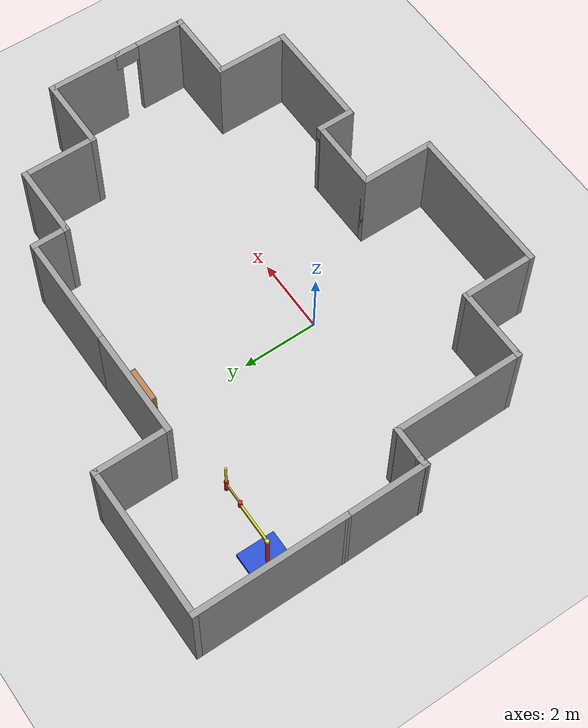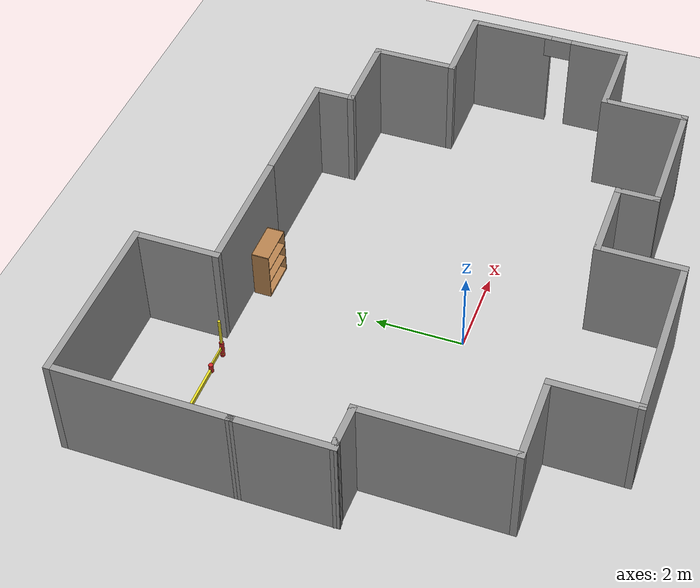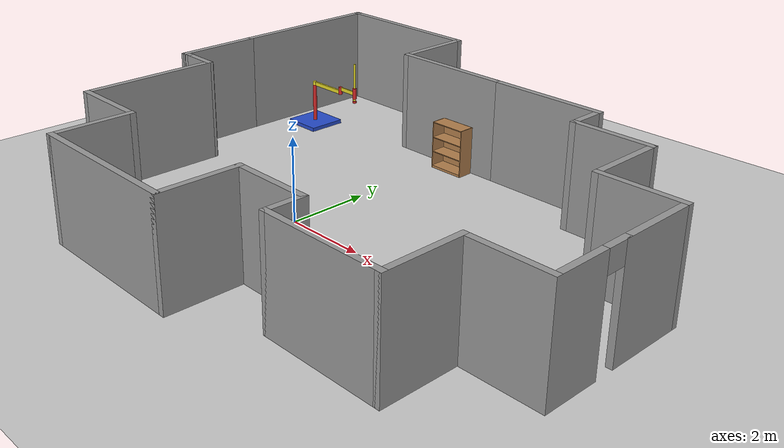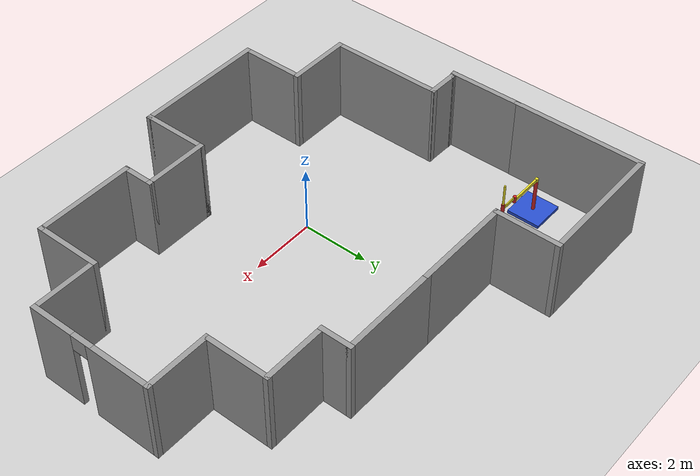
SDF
<sdf version="1.7">
 <world name="default">
  <light name="sun" type="directional">
   <pose>0 0 10 0 -0 0</pose>
   <diffuse>0.8 0.8 0.8 1</diffuse>
   <specular>0.2 0.2 0.2 1</specular>
   <attenuation>
    <range>1000</range>
    <constant>0.9</constant>
    <linear>0.01</linear>
    <quadratic>0.001</quadratic>
   </attenuation>
   <direction>-0.5 0.1 -0.9</direction>
   <spot><inner_angle>0</inner_angle><outer_angle>0</outer_angle><falloff>0</falloff></spot>
  </light>
  <model name="ground_plane">
   <static>1</static>
   <link name="link">
    <collision name="collision">
     <geometry><plane><normal>0 0 1</normal><size>100 100</size></plane></geometry>
     <surface>
      <contact><collide_bitmask>65535</collide_bitmask></contact>
      <friction><ode><mu>100</mu><mu2>50</mu2></ode></friction>
     </surface>
    </collision>
    <visual name="visual">
     <cast_shadows>0</cast_shadows>
     <geometry><plane><normal>0 0 1</normal><size>100 100</size></plane></geometry>
     <material>
      <script><uri>file://media/materials/scripts/gazebo.material</uri><name>Gazebo/Grey</name></script>
     </material>
    </visual>
   </link>
  </model>
  <gravity>0 0 -9.8</gravity>
  <magnetic_field>6e-06 2.3e-05 -4.2e-05</magnetic_field>
  <atmosphere type="adiabatic"/>
  <physics type="ode">
   <max_step_size>0.001</max_step_size>
   <real_time_factor>1</real_time_factor>
   <real_time_update_rate>1000</real_time_update_rate>
  </physics>
  <scene><ambient>0.4 0.4 0.4 1</ambient><background>0.7 0.7 0.7 1</background><shadows>1</shadows></scene>
  <audio><device>default</device></audio>
  <spherical_coordinates>
   <surface_model>EARTH_WGS84</surface_model>
   <latitude_deg>0</latitude_deg>
   <longitude_deg>0</longitude_deg>
   <elevation>0</elevation>
   <heading_deg>0</heading_deg>
  </spherical_coordinates>
  <model name="my_house">
   <pose>1.30477 1.28 0 0 -0 0</pose>
   <link name="Wall_0">
    <collision name="Wall_0_Collision">
     <geometry><box><size>4 0.15 2.5</size></box></geometry>
     <pose>0 0 1.25 0 -0 0</pose>
    </collision>
    <visual name="Wall_0_Visual">
     <pose>0 0 1.25 0 -0 0</pose>
     <geometry><box><size>4 0.15 2.5</size></box></geometry>
     <material>
      <script><uri>file://media/materials/scripts/gazebo.material</uri><name>Gazebo/Grey</name></script>
      <ambient>1 1 1 1</ambient>
     </material>
     <meta><layer>0</layer></meta>
    </visual>
    <pose>-1.84977 -5.55 0 0 -0 0</pose>
   </link>
   <link name="Wall_1">
    <collision name="Wall_1_Collision">
     <geometry><box><size>2 0.15 2.5</size></box></geometry>
     <pose>0 0 1.25 0 -0 0</pose>
    </collision>
    <visual name="Wall_1_Visual">
     <pose>0 0 1.25 0 -0 0</pose>
     <geometry><box><size>2 0.15 2.5</size></box></geometry>
     <material>
      <script><uri>file://media/materials/scripts/gazebo.material</uri><name>Gazebo/Grey</name></script>
      <ambient>1 1 1 1</ambient>
     </material>
     <meta><layer>0</layer></meta>
    </visual>
    <pose>0.075228 -4.625 0 0 -0 1.5708</pose>
   </link>
   <link name="Wall_10">
    <collision name="Wall_10_Collision">
     <geometry><box><size>2 0.15 2.5</size></box></geometry>
     <pose>0 0 1.25 0 -0 0</pose>
    </collision>
    <visual name="Wall_10_Visual">
     <pose>0 0 1.25 0 -0 0</pose>
     <geometry><box><size>2 0.15 2.5</size></box></geometry>
     <material>
      <script><uri>file://media/materials/scripts/gazebo.material</uri><name>Gazebo/Grey</name></script>
      <ambient>1 1 1 1</ambient>
     </material>
     <meta><layer>0</layer></meta>
    </visual>
    <pose>5.70023 1 0 0 -0 3.14159</pose>
   </link>
   <link name="Wall_11">
    <collision name="Wall_11_Collision">
     <geometry><box><size>2 0.15 2.5</size></box></geometry>
     <pose>0 0 1.25 0 -0 0</pose>
    </collision>
    <visual name="Wall_11_Visual">
     <pose>0 0 1.25 0 -0 0</pose>
     <geometry><box><size>2 0.15 2.5</size></box></geometry>
     <material>
      <script><uri>file://media/materials/scripts/gazebo.material</uri><name>Gazebo/Grey</name></script>
      <ambient>1 1 1 1</ambient>
     </material>
     <meta><layer>0</layer></meta>
    </visual>
    <pose>4.77523 1.925 0 0 -0 1.5708</pose>
   </link>
   <link name="Wall_13">
    <collision name="Wall_13_Collision">
     <geometry><box><size>2 0.15 2.5</size></box></geometry>
     <pose>0 0 1.25 0 -0 0</pose>
    </collision>
    <visual name="Wall_13_Visual">
     <pose>0 0 1.25 0 -0 0</pose>
     <geometry><box><size>2 0.15 2.5</size></box></geometry>
     <material>
      <script><uri>file://media/materials/scripts/gazebo.material</uri><name>Gazebo/Grey</name></script>
      <ambient>1 1 1 1</ambient>
     </material>
     <meta><layer>0</layer></meta>
    </visual>
    <pose>3.85023 2.85 0 0 -0 3.14159</pose>
   </link>
   <link name="Wall_14">
    <collision name="Wall_14_Collision">
     <geometry><box><size>1 0.15 2.5</size></box></geometry>
     <pose>0 0 1.25 0 -0 0</pose>
    </collision>
    <visual name="Wall_14_Visual">
     <pose>0 0 1.25 0 -0 0</pose>
     <geometry><box><size>1 0.15 2.5</size></box></geometry>
     <material>
      <script><uri>file://media/materials/scripts/gazebo.material</uri><name>Gazebo/Grey</name></script>
      <ambient>1 1 1 1</ambient>
     </material>
     <meta><layer>0</layer></meta>
    </visual>
    <pose>2.92523 3.275 0 0 -0 1.5708</pose>
   </link>
   <link name="Wall_15">
    <collision name="Wall_15_Collision">
     <geometry><box><size>3 0.15 2.5</size></box></geometry>
     <pose>0 0 1.25 0 -0 0</pose>
    </collision>
    <visual name="Wall_15_Visual">
     <pose>0 0 1.25 0 -0 0</pose>
     <geometry><box><size>3 0.15 2.5</size></box></geometry>
     <material>
      <script><uri>file://media/materials/scripts/gazebo.material</uri><name>Gazebo/Grey</name></script>
      <ambient>1 1 1 1</ambient>
     </material>
     <meta><layer>0</layer></meta>
    </visual>
    <pose>1.50023 3.7 0 0 -0 3.14159</pose>
   </link>
   <link name="Wall_16">
    <collision name="Wall_16_Collision">
     <geometry><box><size>3 0.15 2.5</size></box></geometry>
     <pose>0 0 1.25 0 -0 0</pose>
    </collision>
    <visual name="Wall_16_Visual">
     <pose>0 0 1.25 0 -0 0</pose>
     <geometry><box><size>3 0.15 2.5</size></box></geometry>
     <material>
      <script><uri>file://media/materials/scripts/gazebo.material</uri><name>Gazebo/Grey</name></script>
      <ambient>1 1 1 1</ambient>
     </material>
     <meta><layer>0</layer></meta>
    </visual>
    <pose>-1.34977 3.7 0 0 -0 3.14159</pose>
   </link>
   <link name="Wall_18">
    <collision name="Wall_18_Collision">
     <geometry><box><size>2 0.15 2.5</size></box></geometry>
     <pose>0 0 1.25 0 -0 0</pose>
    </collision>
    <visual name="Wall_18_Visual">
     <pose>0 0 1.25 0 -0 0</pose>
     <geometry><box><size>2 0.15 2.5</size></box></geometry>
     <material>
      <script><uri>file://media/materials/scripts/gazebo.material</uri><name>Gazebo/Grey</name></script>
      <ambient>1 1 1 1</ambient>
     </material>
     <meta><layer>0</layer></meta>
    </visual>
    <pose>-2.77477 4.625 0 0 -0 1.5708</pose>
   </link>
   <link name="Wall_19">
    <collision name="Wall_19_Collision">
     <geometry><box><size>4 0.15 2.5</size></box></geometry>
     <pose>0 0 1.25 0 -0 0</pose>
    </collision>
    <visual name="Wall_19_Visual">
     <pose>0 0 1.25 0 -0 0</pose>
     <geometry><box><size>4 0.15 2.5</size></box></geometry>
     <material>
      <script><uri>file://media/materials/scripts/gazebo.material</uri><name>Gazebo/Grey</name></script>
      <ambient>1 1 1 1</ambient>
     </material>
     <meta><layer>0</layer></meta>
    </visual>
    <pose>-4.69977 5.55 0 0 -0 3.14159</pose>
   </link>
   <link name="Wall_2">
    <collision name="Wall_2_Collision">
     <geometry><box><size>2 0.15 2.5</size></box></geometry>
     <pose>0 0 1.25 0 -0 0</pose>
    </collision>
    <visual name="Wall_2_Visual">
     <pose>0 0 1.25 0 -0 0</pose>
     <geometry><box><size>2 0.15 2.5</size></box></geometry>
     <material>
      <script><uri>file://media/materials/scripts/gazebo.material</uri><name>Gazebo/Grey</name></script>
      <ambient>1 1 1 1</ambient>
     </material>
     <meta><layer>0</layer></meta>
    </visual>
    <pose>1.00023 -3.7 0 0 -0 0</pose>
   </link>
   <link name="Wall_20">
    <collision name="Wall_20_Collision">
     <geometry><box><size>4 0.15 2.5</size></box></geometry>
     <pose>0 0 1.25 0 -0 0</pose>
    </collision>
    <visual name="Wall_20_Visual">
     <pose>0 0 1.25 0 -0 0</pose>
     <geometry><box><size>4 0.15 2.5</size></box></geometry>
     <material>
      <script><uri>file://media/materials/scripts/gazebo.material</uri><name>Gazebo/Grey</name></script>
      <ambient>1 1 1 1</ambient>
     </material>
     <meta><layer>0</layer></meta>
    </visual>
    <pose>-6.62477 3.625 0 0 -0 -1.5708</pose>
   </link>
   <link name="Wall_22">
    <collision name="Wall_22_Collision">
     <geometry><box><size>2 0.15 2.5</size></box></geometry>
     <pose>0 0 1.25 0 -0 0</pose>
    </collision>
    <visual name="Wall_22_Visual">
     <pose>0 0 1.25 0 -0 0</pose>
     <geometry><box><size>2 0.15 2.5</size></box></geometry>
     <material>
      <script><uri>file://media/materials/scripts/gazebo.material</uri><name>Gazebo/Grey</name></script>
      <ambient>1 1 1 1</ambient>
     </material>
     <meta><layer>0</layer></meta>
    </visual>
    <pose>-3.77477 -4.625 0 0 -0 1.5708</pose>
   </link>
   <link name="Wall_23">
    <collision name="Wall_23_Collision">
     <geometry><box><size>2 0.15 2.5</size></box></geometry>
     <pose>0 0 1.25 0 -0 0</pose>
    </collision>
    <visual name="Wall_23_Visual">
     <pose>0 0 1.25 0 -0 0</pose>
     <geometry><box><size>2 0.15 2.5</size></box></geometry>
     <material>
      <script><uri>file://media/materials/scripts/gazebo.material</uri><name>Gazebo/Grey</name></script>
      <ambient>1 1 1 1</ambient>
     </material>
     <meta><layer>0</layer></meta>
    </visual>
    <pose>-4.69977 -3.7 0 0 -0 3.14159</pose>
   </link>
   <link name="Wall_24">
    <collision name="Wall_24_Collision">
     <geometry><box><size>3.4711 0.15 2.5</size></box></geometry>
     <pose>0 0 1.25 0 -0 0</pose>
    </collision>
    <visual name="Wall_24_Visual">
     <pose>0 0 1.25 0 -0 0</pose>
     <geometry><box><size>3.4711 0.15 2.5</size></box></geometry>
     <material>
      <script><uri>file://media/materials/scripts/gazebo.material</uri><name>Gazebo/Grey</name></script>
      <ambient>1 1 1 1</ambient>
     </material>
     <meta><layer>0</layer></meta>
    </visual>
    <pose>-5.62477 -2.03945 0 0 -0 1.5708</pose>
   </link>
   <link name="Wall_25">
    <collision name="Wall_25_Collision">
     <geometry><box><size>0.987433 0.15 2.5</size></box></geometry>
     <pose>0 0 1.25 0 -0 0</pose>
    </collision>
    <visual name="Wall_25_Visual">
     <pose>0 0 1.25 0 -0 0</pose>
     <geometry><box><size>0.987433 0.15 2.5</size></box></geometry>
     <material>
      <script><uri>file://media/materials/scripts/gazebo.material</uri><name>Gazebo/Grey</name></script>
      <ambient>1 1 1 1</ambient>
     </material>
     <meta><layer>0</layer></meta>
    </visual>
    <pose>-6.04341 -0.380268 0 0 -0 3.12235</pose>
   </link>
   <link name="Wall_28">
    <collision name="Wall_28_Collision">
     <geometry><box><size>2.244 0.15 2.5</size></box></geometry>
     <pose>0 0 1.25 0 -0 0</pose>
    </collision>
    <visual name="Wall_28_Visual">
     <pose>0 0 1.25 0 -0 0</pose>
     <geometry><box><size>2.244 0.15 2.5</size></box></geometry>
     <material>
      <script><uri>file://media/materials/scripts/gazebo.material</uri><name>Gazebo/Grey</name></script>
      <ambient>1 1 1 1</ambient>
     </material>
     <meta><layer>0</layer></meta>
    </visual>
    <pose>-6.61841 0.653348 0 0 -0 -1.56472</pose>
   </link>
   <link name="Wall_29">
    <collision name="Wall_29_Collision">
     <geometry><box><size>0.301476 0.15 2.5</size></box></geometry>
     <pose>0 0 1.25 0 -0 0</pose>
    </collision>
    <visual name="Wall_29_Visual">
     <pose>0 0 1.25 0 -0 0</pose>
     <geometry><box><size>0.301476 0.15 2.5</size></box></geometry>
     <material>
      <script><uri>file://media/materials/scripts/gazebo.material</uri><name>Gazebo/Grey</name></script>
      <ambient>1 1 1 1</ambient>
     </material>
     <meta><layer>0</layer></meta>
    </visual>
    <pose>-6.53772 -0.382757 0 0 -0 0.13972</pose>
   </link>
   <link name="Wall_3">
    <collision name="Wall_3_Collision">
     <geometry><box><size>1 0.15 2.5</size></box></geometry>
     <pose>0 0 1.25 0 -0 0</pose>
    </collision>
    <visual name="Wall_3_Visual">
     <pose>0 0 1.25 0 -0 0</pose>
     <geometry><box><size>1 0.15 2.5</size></box></geometry>
     <material>
      <script><uri>file://media/materials/scripts/gazebo.material</uri><name>Gazebo/Grey</name></script>
      <ambient>1 1 1 1</ambient>
     </material>
     <meta><layer>0</layer></meta>
    </visual>
    <pose>1.92523 -4.125 0 0 -0 -1.5708</pose>
   </link>
   <link name="Wall_4">
    <collision name="Wall_4_Collision">
     <geometry><box><size>3 0.15 2.5</size></box></geometry>
     <pose>0 0 1.25 0 -0 0</pose>
    </collision>
    <visual name="Wall_4_Visual">
     <pose>0 0 1.25 0 -0 0</pose>
     <geometry><box><size>3 0.15 2.5</size></box></geometry>
     <material>
      <script><uri>file://media/materials/scripts/gazebo.material</uri><name>Gazebo/Grey</name></script>
      <ambient>1 1 1 1</ambient>
     </material>
     <meta><layer>0</layer></meta>
    </visual>
    <pose>3.35023 -4.55 0 0 -0 0</pose>
   </link>
   <link name="Wall_5">
    <collision name="Wall_5_Collision">
     <geometry><box><size>2 0.15 2.5</size></box></geometry>
     <pose>0 0 1.25 0 -0 0</pose>
    </collision>
    <visual name="Wall_5_Visual">
     <pose>0 0 1.25 0 -0 0</pose>
     <geometry><box><size>2 0.15 2.5</size></box></geometry>
     <material>
      <script><uri>file://media/materials/scripts/gazebo.material</uri><name>Gazebo/Grey</name></script>
      <ambient>1 1 1 1</ambient>
     </material>
     <meta><layer>0</layer></meta>
    </visual>
    <pose>4.77523 -3.625 0 0 -0 1.5708</pose>
   </link>
   <link name="Wall_6">
    <collision name="Wall_6_Collision">
     <geometry><box><size>2 0.15 2.5</size></box></geometry>
     <pose>0 0 1.25 0 -0 0</pose>
    </collision>
    <visual name="Wall_6_Visual">
     <pose>0 0 1.25 0 -0 0</pose>
     <geometry><box><size>2 0.15 2.5</size></box></geometry>
     <material>
      <script><uri>file://media/materials/scripts/gazebo.material</uri><name>Gazebo/Grey</name></script>
      <ambient>1 1 1 1</ambient>
     </material>
     <meta><layer>0</layer></meta>
    </visual>
    <pose>5.70023 -2.7 0 0 -0 0</pose>
   </link>
   <link name="Wall_8">
    <pose>6.62523 -1.775 0 0 -0 1.5708</pose>
    <visual name="Wall_8_Visual_0">
     <pose>-0.318833 0 1.25 0 -0 0</pose>
     <geometry><box><size>1.36233 0.15 2.5</size></box></geometry>
     <material>
      <script><uri>file://media/materials/scripts/gazebo.material</uri><name>Gazebo/Grey</name></script>
      <ambient>1 1 1 1</ambient>
     </material>
     <meta><layer>0</layer></meta>
    </visual>
    <collision name="Wall_8_Collision_0">
     <geometry><box><size>1.36233 0.15 2.5</size></box></geometry>
     <pose>-0.318833 0 1.25 0 -0 0</pose>
    </collision>
    <visual name="Wall_8_Visual_1">
     <pose>0.681167 0 2.25 0 -0 0</pose>
     <geometry><box><size>0.637666 0.15 0.5</size></box></geometry>
     <material>
      <script><uri>file://media/materials/scripts/gazebo.material</uri><name>Gazebo/Grey</name></script>
      <ambient>1 1 1 1</ambient>
     </material>
     <meta><layer>0</layer></meta>
    </visual>
    <collision name="Wall_8_Collision_1">
     <geometry><box><size>0.637666 0.15 0.5</size></box></geometry>
     <pose>0.681167 0 2.25 0 -0 0</pose>
    </collision>
   </link>
   <link name="Wall_9">
    <collision name="Wall_9_Collision">
     <geometry><box><size>2 0.15 2.5</size></box></geometry>
     <pose>0 0 1.25 0 -0 0</pose>
    </collision>
    <visual name="Wall_9_Visual">
     <pose>0 0 1.25 0 -0 0</pose>
     <geometry><box><size>2 0.15 2.5</size></box></geometry>
     <material>
      <script><uri>file://media/materials/scripts/gazebo.material</uri><name>Gazebo/Grey</name></script>
      <ambient>1 1 1 1</ambient>
     </material>
     <meta><layer>0</layer></meta>
    </visual>
    <pose>6.62523 0.075 0 0 -0 1.5708</pose>
   </link>
   <static>1</static>
  </model>
  <model name="simple_arm">
   <link name="arm_base">
    <inertial>
     <pose>0 0 0.00099 0 -0 0</pose>
     <inertia><ixx>1.11</ixx><ixy>0</ixy><ixz>0</ixz><iyy>100.11</iyy><iyz>0</iyz><izz>1.01</izz></inertia>
     <mass>101</mass>
    </inertial>
    <collision name="arm_base_geom">
     <pose>0 0 0.05 0 -0 0</pose>
     <geometry><box><size>1 1 0.1</size></box></geometry>
    </collision>
    <visual name="arm_base_geom_visual">
     <pose>0 0 0.05 0 -0 0</pose>
     <geometry><box><size>1 1 0.1</size></box></geometry>
     <material>
      <script><uri>file://media/materials/scripts/gazebo.material</uri><name>Gazebo/Blue</name></script>
     </material>
    </visual>
    <collision name="arm_base_geom_arm_trunk">
     <pose>0 0 0.6 0 -0 0</pose>
     <geometry><cylinder><radius>0.05</radius><length>1</length></cylinder></geometry>
    </collision>
    <visual name="arm_base_geom_arm_trunk_visual">
     <pose>0 0 0.6 0 -0 0</pose>
     <geometry><cylinder><radius>0.05</radius><length>1</length></cylinder></geometry>
     <material>
      <script><uri>file://media/materials/scripts/gazebo.material</uri><name>Gazebo/Red</name></script>
     </material>
    </visual>
   </link>
   <link name="arm_shoulder_pan">
    <pose>0 0 1.1 0 -0 0</pose>
    <inertial>
     <pose>0.045455 0 0 0 -0 0</pose>
     <inertia><ixx>0.011</ixx><ixy>0</ixy><ixz>0</ixz><iyy>0.0225</iyy><iyz>0</iyz><izz>0.0135</izz></inertia>
     <mass>1.1</mass>
    </inertial>
    <collision name="arm_shoulder_pan_geom">
     <pose>0 0 0.05 0 -0 0</pose>
     <geometry><cylinder><radius>0.05</radius><length>0.1</length></cylinder></geometry>
    </collision>
    <visual name="arm_shoulder_pan_geom_visual">
     <pose>0 0 0.05 0 -0 0</pose>
     <geometry><cylinder><radius>0.05</radius><length>0.1</length></cylinder></geometry>
     <material>
      <script><uri>file://media/materials/scripts/gazebo.material</uri><name>Gazebo/Yellow</name></script>
     </material>
    </visual>
    <collision name="arm_shoulder_pan_geom_arm_shoulder">
     <pose>0.55 0 0.05 0 -0 0</pose>
     <geometry><box><size>1 0.05 0.1</size></box></geometry>
    </collision>
    <visual name="arm_shoulder_pan_geom_arm_shoulder_visual">
     <pose>0.55 0 0.05 0 -0 0</pose>
     <geometry><box><size>1 0.05 0.1</size></box></geometry>
     <material>
      <script><uri>file://media/materials/scripts/gazebo.material</uri><name>Gazebo/Yellow</name></script>
     </material>
    </visual>
   </link>
   <link name="arm_elbow_pan">
    <pose>1.05 0 1.1 0 -0 0</pose>
    <inertial>
     <pose>0.0875 0 0.083333 0 -0 0</pose>
     <inertia>
      <ixx>0.031</ixx>
      <ixy>0</ixy>
      <ixz>0.005</ixz>
      <iyy>0.07275</iyy>
      <iyz>0</iyz>
      <izz>0.04475</izz>
     </inertia>
     <mass>1.2</mass>
    </inertial>
    <collision name="arm_elbow_pan_geom">
     <pose>0 0 0.1 0 -0 0</pose>
     <geometry><cylinder><radius>0.05</radius><length>0.2</length></cylinder></geometry>
    </collision>
    <visual name="arm_elbow_pan_geom_visual">
     <pose>0 0 0.1 0 -0 0</pose>
     <geometry><cylinder><radius>0.05</radius><length>0.2</length></cylinder></geometry>
     <material>
      <script><uri>file://media/materials/scripts/gazebo.material</uri><name>Gazebo/Red</name></script>
     </material>
    </visual>
    <collision name="arm_elbow_pan_geom_arm_elbow">
     <pose>0.3 0 0.15 0 -0 0</pose>
     <geometry><box><size>0.5 0.03 0.1</size></box></geometry>
    </collision>
    <visual name="arm_elbow_pan_geom_arm_elbow_visual">
     <pose>0.3 0 0.15 0 -0 0</pose>
     <geometry><box><size>0.5 0.03 0.1</size></box></geometry>
     <material>
      <script><uri>file://media/materials/scripts/gazebo.material</uri><name>Gazebo/Yellow</name></script>
     </material>
    </visual>
    <collision name="arm_elbow_pan_geom_arm_wrist">
     <pose>0.55 0 0.15 0 -0 0</pose>
     <geometry><cylinder><radius>0.05</radius><length>0.3</length></cylinder></geometry>
    </collision>
    <visual name="arm_elbow_pan_geom_arm_wrist_visual">
     <pose>0.55 0 0.15 0 -0 0</pose>
     <geometry><cylinder><radius>0.05</radius><length>0.3</length></cylinder></geometry>
     <material>
      <script><uri>file://media/materials/scripts/gazebo.material</uri><name>Gazebo/Red</name></script>
     </material>
    </visual>
   </link>
   <link name="arm_wrist_lift">
    <pose>1.6 0 1.05 0 -0 0</pose>
    <inertial>
     <inertia><ixx>0.01</ixx><ixy>0</ixy><ixz>0</ixz><iyy>0.01</iyy><iyz>0</iyz><izz>0.001</izz></inertia>
     <mass>0.1</mass>
    </inertial>
    <collision name="arm_wrist_lift_geom">
     <pose>0 0 0.5 0 -0 0</pose>
     <geometry><cylinder><radius>0.03</radius><length>1</length></cylinder></geometry>
    </collision>
    <visual name="arm_wrist_lift_geom_visual">
     <pose>0 0 0.5 0 -0 0</pose>
     <geometry><cylinder><radius>0.03</radius><length>1</length></cylinder></geometry>
     <material>
      <script><uri>file://media/materials/scripts/gazebo.material</uri><name>Gazebo/Yellow</name></script>
     </material>
    </visual>
   </link>
   <link name="arm_wrist_roll">
    <pose>1.6 0 1 0 -0 0</pose>
    <inertial>
     <inertia><ixx>0.01</ixx><ixy>0</ixy><ixz>0</ixz><iyy>0.01</iyy><iyz>0</iyz><izz>0.001</izz></inertia>
     <mass>0.1</mass>
    </inertial>
    <collision name="arm_wrist_roll_geom">
     <pose>0 0 0.025 0 -0 0</pose>
     <geometry><cylinder><radius>0.05</radius><length>0.05</length></cylinder></geometry>
    </collision>
    <visual name="arm_wrist_roll_geom_visual">
     <pose>0 0 0.025 0 -0 0</pose>
     <geometry><cylinder><radius>0.05</radius><length>0.05</length></cylinder></geometry>
     <material>
      <script><uri>file://media/materials/scripts/gazebo.material</uri><name>Gazebo/Red</name></script>
     </material>
    </visual>
   </link>
   <joint name="arm_shoulder_pan_joint" type="revolute">
    <parent>arm_base</parent>
    <child>arm_shoulder_pan</child>
    <axis>
     <dynamics>
      <damping>1</damping>
      <friction>0</friction>
      <spring_reference>0</spring_reference>
      <spring_stiffness>0</spring_stiffness>
     </dynamics>
     <xyz expressed_in="__model__">0 0 1</xyz>
     <limit><lower>-1e+16</lower><upper>1e+16</upper></limit>
    </axis>
   </joint>
   <joint name="arm_elbow_pan_joint" type="revolute">
    <parent>arm_shoulder_pan</parent>
    <child>arm_elbow_pan</child>
    <axis>
     <dynamics>
      <damping>1</damping>
      <friction>0</friction>
      <spring_reference>0</spring_reference>
      <spring_stiffness>0</spring_stiffness>
     </dynamics>
     <xyz expressed_in="__model__">0 0 1</xyz>
     <limit><lower>-1e+16</lower><upper>1e+16</upper></limit>
    </axis>
   </joint>
   <joint name="arm_wrist_lift_joint" type="prismatic">
    <parent>arm_elbow_pan</parent>
    <child>arm_wrist_lift</child>
    <axis>
     <dynamics>
      <damping>1</damping>
      <friction>0</friction>
      <spring_reference>0</spring_reference>
      <spring_stiffness>0</spring_stiffness>
     </dynamics>
     <limit><lower>-0.8</lower><upper>0.1</upper></limit>
     <xyz expressed_in="__model__">0 0 1</xyz>
    </axis>
   </joint>
   <joint name="arm_wrist_roll_joint" type="revolute">
    <parent>arm_wrist_lift</parent>
    <child>arm_wrist_roll</child>
    <axis>
     <dynamics>
      <damping>1</damping>
      <friction>0</friction>
      <spring_reference>0</spring_reference>
      <spring_stiffness>0</spring_stiffness>
     </dynamics>
     <limit><lower>-2.99999</lower><upper>2.99999</upper></limit>
     <xyz expressed_in="__model__">0 0 1</xyz>
    </axis>
   </joint>
   <pose>-4.39463 4.37561 -0 0 0 -0.00373</pose>
  </model>
  <model name="bookshelf">
   <static>1</static>
   <link name="link">
    <inertial><mass>1</mass></inertial>
    <collision name="back">
     <pose>0 0.005 0.6 0 -0 0</pose>
     <geometry><box><size>0.9 0.01 1.2</size></box></geometry>
    </collision>
    <visual name="visual1">
     <pose>0 0.005 0.6 0 -0 0</pose>
     <geometry><box><size>0.9 0.01 1.2</size></box></geometry>
     <material>
      <script><uri>file://media/materials/scripts/gazebo.material</uri><name>Gazebo/Wood</name></script>
     </material>
    </visual>
    <collision name="left_side">
     <pose>0.45 -0.195 0.6 0 -0 0</pose>
     <geometry><box><size>0.02 0.4 1.2</size></box></geometry>
    </collision>
    <visual name="visual2">
     <pose>0.45 -0.195 0.6 0 -0 0</pose>
     <geometry><box><size>0.02 0.4 1.2</size></box></geometry>
     <material>
      <script><uri>file://media/materials/scripts/gazebo.material</uri><name>Gazebo/Wood</name></script>
     </material>
    </visual>
    <collision name="right_side">
     <pose>-0.45 -0.195 0.6 0 -0 0</pose>
     <geometry><box><size>0.02 0.4 1.2</size></box></geometry>
    </collision>
    <visual name="visual3">
     <pose>-0.45 -0.195 0.6 0 -0 0</pose>
     <geometry><box><size>0.02 0.4 1.2</size></box></geometry>
     <material>
      <script><uri>file://media/materials/scripts/gazebo.material</uri><name>Gazebo/Wood</name></script>
     </material>
    </visual>
    <collision name="bottom">
     <pose>0 -0.195 0.03 0 -0 0</pose>
     <geometry><box><size>0.88 0.4 0.06</size></box></geometry>
    </collision>
    <visual name="visual4">
     <pose>0 -0.195 0.03 0 -0 0</pose>
     <geometry><box><size>0.88 0.4 0.06</size></box></geometry>
     <material>
      <script><uri>file://media/materials/scripts/gazebo.material</uri><name>Gazebo/Wood</name></script>
     </material>
    </visual>
    <collision name="top">
     <pose>0 -0.195 1.19 0 -0 0</pose>
     <geometry><box><size>0.88 0.4 0.02</size></box></geometry>
    </collision>
    <visual name="visual5">
     <pose>0 -0.195 1.19 0 -0 0</pose>
     <geometry><box><size>0.88 0.4 0.02</size></box></geometry>
     <material>
      <script><uri>file://media/materials/scripts/gazebo.material</uri><name>Gazebo/Wood</name></script>
     </material>
    </visual>
    <collision name="low_shelf">
     <pose>0 -0.195 0.43 0 -0 0</pose>
     <geometry><box><size>0.88 0.4 0.02</size></box></geometry>
    </collision>
    <visual name="visual6">
     <pose>0 -0.195 0.43 0 -0 0</pose>
     <geometry><box><size>0.88 0.4 0.02</size></box></geometry>
     <material>
      <script><uri>file://media/materials/scripts/gazebo.material</uri><name>Gazebo/Wood</name></script>
     </material>
    </visual>
    <collision name="high_shelf">
     <pose>0 -0.195 0.8 0 -0 0</pose>
     <geometry><box><size>0.88 0.4 0.02</size></box></geometry>
    </collision>
    <visual name="visual7">
     <pose>0 -0.195 0.8 0 -0 0</pose>
     <geometry><box><size>0.88 0.4 0.02</size></box></geometry>
     <material>
      <script><uri>file://media/materials/scripts/gazebo.material</uri><name>Gazebo/Wood</name></script>
     </material>
    </visual>
   </link>
   <pose>0.3793 4.87196 0 0 -0 0</pose>
  </model>
 </world>
</sdf>
